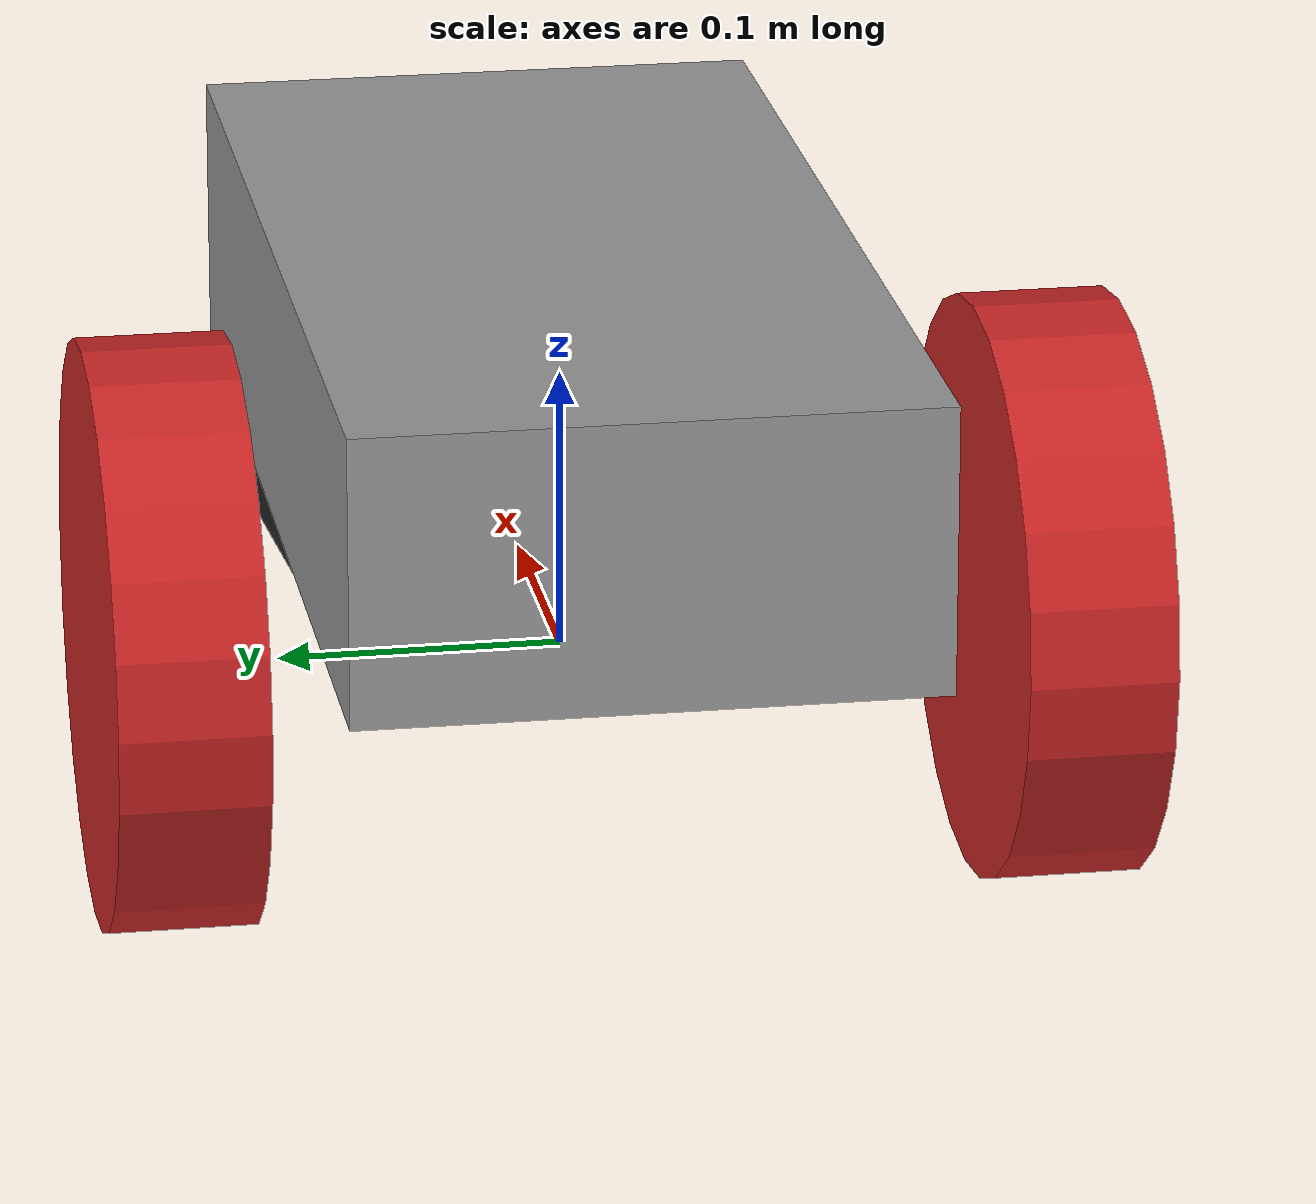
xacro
<?xml version="1.0" encoding="UTF-8"?>

<robot xmlns:xacro="http://www.ros.org/wiki/xacro" name="test_robot">

    <xacro:include filename="gazebo.urdf.xacro" />
    <xacro:include filename="ros2_control.xacro" />

    <xacro:property name="my_pi" value="3.14"/>
    <xacro:property name="caster_radius" value="0.1"/>
    <xacro:property name="wheel_radius" value="0.1"/>
    <xacro:property name="wheel_width" value="0.05"/>
    <xacro:property name="base_length" value="0.4"/>
    <xacro:property name="base_width" value="0.2"/>
    <xacro:property name="base_height" value="0.1"/>

    <link name="base_link">
        <visual>
            <geometry>
                <box size="${base_length} ${base_width} ${base_height}"/>
            </geometry>
            <origin xyz="0 0 ${base_height/2 + 0.05}"/>
        </visual>
        <collision>
            <geometry>
                <box size="${base_length} ${base_width} ${base_height}"/>
            </geometry>
            <origin xyz="0 0 ${base_height/2 + 0.05}"/>
        </collision>
        <inertial>
            <mass value="5.0"/>
            <origin xyz="0 0 0" rpy="0 0 0"/>
            <inertia ixx="0.05" iyy="0.05" izz="0.05" ixy="0" ixz="0" iyz="0"/>
        </inertial>
    </link>

    <link name="right_wheel">
        <visual>
            <geometry>
                <cylinder radius="${wheel_radius}" length="${wheel_width}"/>
            </geometry>

        </visual>
        <collision>
            <geometry>
                <cylinder radius="${wheel_radius}" length="${wheel_width}"/>
            </geometry>

        </collision>
        <inertial>
            <mass value="1.0"/>
            <origin xyz="0 0 0" rpy="0 0 0"/>
            <inertia ixx="0.01" iyy="0.01" izz="0.01" ixy="0" ixz="0" iyz="0"/>
        </inertial>
    </link>

    <link name="left_wheel">
        <visual>
            <geometry>
                <cylinder radius="${wheel_radius}" length="${wheel_width}"/>
            </geometry>
        </visual>
        <collision>
            <geometry>
                <cylinder radius="${wheel_radius}" length="${wheel_width}"/>
            </geometry>
        </collision>
        <inertial>
            <mass value="1.0"/>
            <origin xyz="0 0 0" rpy="0 0 0"/>
            <inertia ixx="0.01" iyy="0.01" izz="0.01" ixy="0" ixz="0" iyz="0"/>
        </inertial>
    </link>
    <link name="front_wheel">
        <visual >
            <geometry>
                <sphere radius="${caster_radius}"/>
            </geometry>
        </visual>
        <collision>
            <geometry>
                <sphere radius="${caster_radius}"/>
            </geometry>
        </collision>
        <inertial>
            <mass value="0.5"/>
            <origin xyz="0 0 0" rpy="0 0 0"/>
            <inertia ixx="0.005" iyy="0.005" izz="0.005" ixy="0" ixz="0" iyz="0"/>
        </inertial>
    </link>

    <joint name="right_joint" type="continuous">
        <parent link="base_link"/>
        <child link="right_wheel"/>
        <origin xyz="${-base_length/4} ${base_width/2 + wheel_width} ${base_height/2}" rpy="${my_pi/2} 0 0"/>
        <axis xyz="0 0 1"/>
    </joint>

    <joint name="left_joint" type="continuous">
        <parent link="base_link"/>
        <child link="left_wheel"/>
        <origin xyz="${-base_length/4} -${base_width/2 + wheel_width} ${base_height/2}" rpy="${my_pi/2} 0 0"/>
        <axis xyz="0 0 1"/>
    </joint>

    <joint name="front_joint" type="continuous">
        <parent link="base_link"/>
        <child link="front_wheel"/>
        <origin xyz="${base_length/4} 0 ${base_height/2}" rpy="0 0 0"/>
        <axis xyz="0 1 0"/>
    </joint>

</robot>
